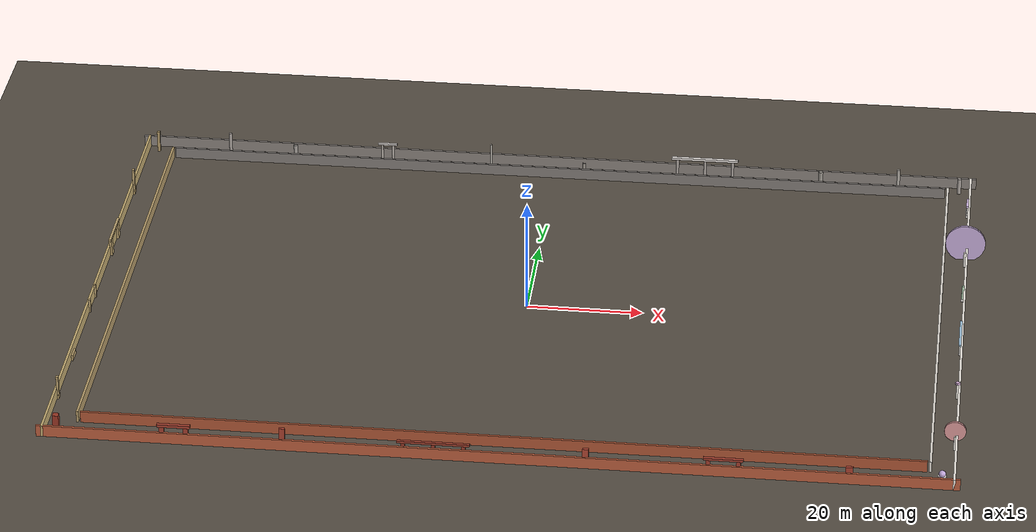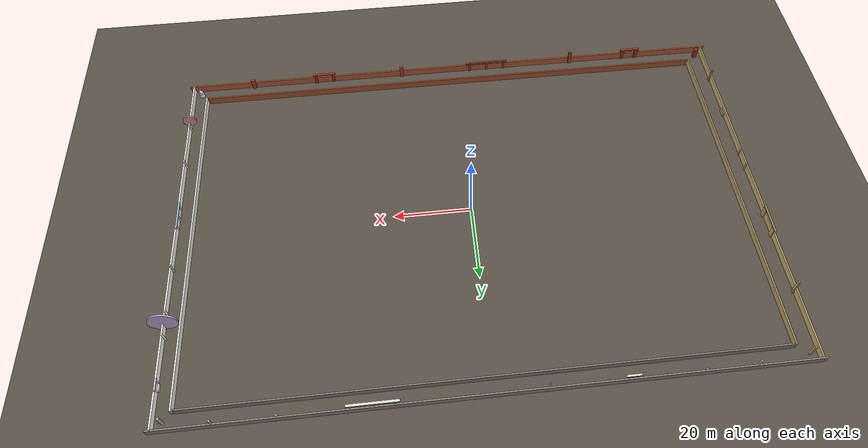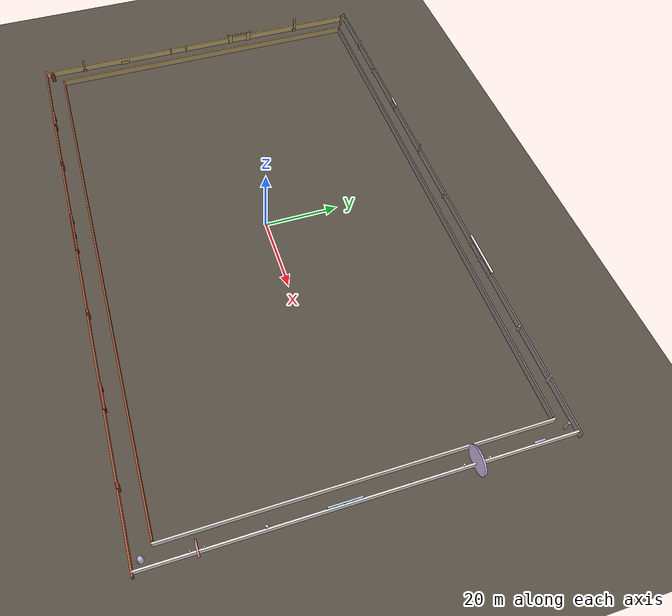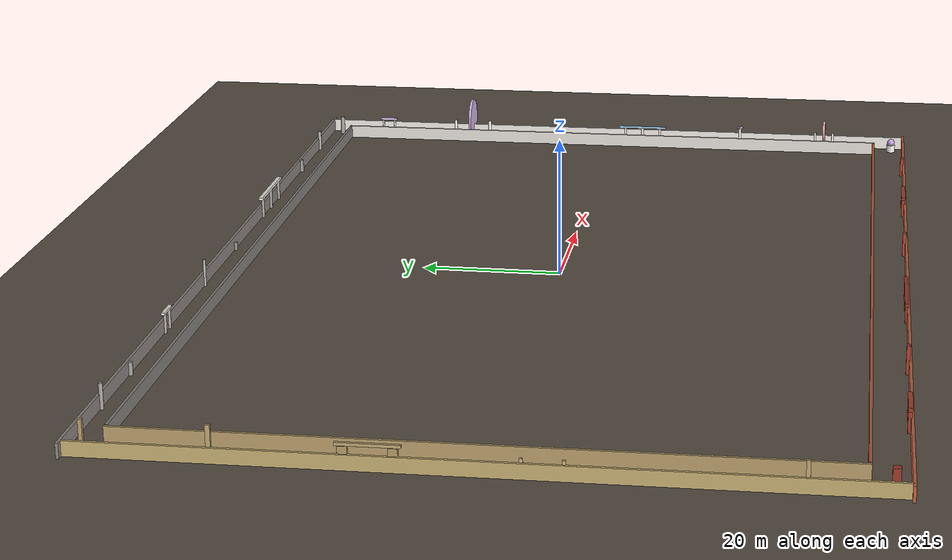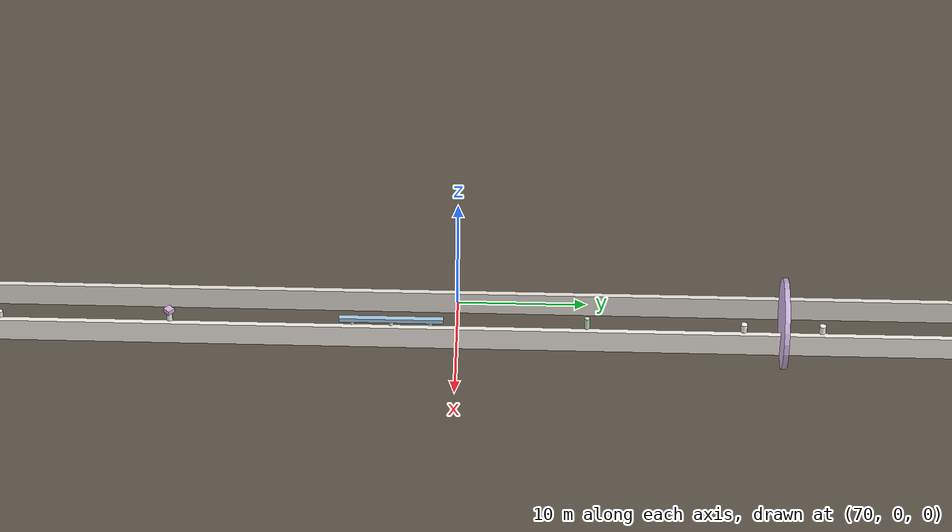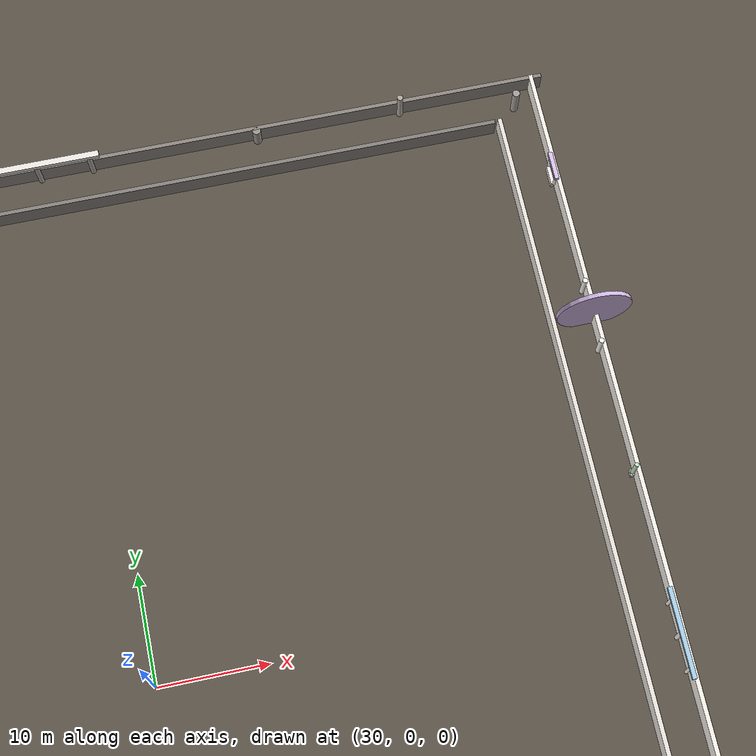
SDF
<?xml version="1.0"?>
<sdf version="1.6">
  <world name="default">
    <gravity>0 0 -9.8</gravity>

    <physics type="ode">
      <real_time_update_rate>1000.0</real_time_update_rate>
      <max_step_size>0.001</max_step_size>
      <real_time_factor>1</real_time_factor>
    </physics>

    <scene>
      <ambient>0.7 0.65 0.6 1</ambient>
      <background>0.4 0.6 0.9 1</background>
      <shadows>true</shadows>
    </scene>

    <!-- Mediterranean Sun -->
    <light type="directional" name="sun">
      <cast_shadows>true</cast_shadows>
      <direction>-0.4 0.3 -0.9</direction>
      <diffuse>1.0 0.95 0.85 1</diffuse>
      <specular>0.3 0.28 0.25 1</specular>
    </light>

    <!-- Ground plane -->
    <model name="ground_plane">
      <static>true</static>
      <pose>0 0 0 0 0 0</pose>
      <link name="link">
        <collision name="collision">
          <geometry>
            <plane>
              <normal>0 0 1</normal>
              <size>300 300</size>
            </plane>
          </geometry>
        </collision>
        <visual name="visual">
          <geometry>
            <plane>
              <normal>0 0 1</normal>
              <size>300 300</size>
            </plane>
          </geometry>
          <material>
            <ambient>0.25 0.22 0.20 1</ambient>
            <diffuse>0.35 0.32 0.28 1</diffuse>
          </material>
        </visual>
      </link>
    </model>

    <!-- ════════════════ OUTER WALLS ════════════════ -->

    <!-- Outer South Wall - Terracotta Red -->
    <model name="outer_south">
      <static>true</static>
      <pose>0 -50 1.0 0 0 0</pose>
      <link name="link">
        <collision name="collision">
          <geometry><box><size>152 0.4 2.0</size></box></geometry>
        </collision>
        <visual name="visual">
          <geometry><box><size>152 0.4 2.0</size></box></geometry>
          <material>
            <ambient>0.6 0.28 0.18 1</ambient>
            <diffuse>0.75 0.38 0.25 1</diffuse>
          </material>
        </visual>
      </link>
    </model>

    <!-- Outer North Wall - Grey Granite -->
    <model name="outer_north">
      <static>true</static>
      <pose>0 50 1.0 0 0 0</pose>
      <link name="link">
        <collision name="collision">
          <geometry><box><size>152 0.4 2.0</size></box></geometry>
        </collision>
        <visual name="visual">
          <geometry><box><size>152 0.4 2.0</size></box></geometry>
          <material>
            <ambient>0.42 0.40 0.38 1</ambient>
            <diffuse>0.55 0.52 0.50 1</diffuse>
          </material>
        </visual>
      </link>
    </model>

    <!-- Outer West Wall - Golden Sandstone -->
    <model name="outer_west">
      <static>true</static>
      <pose>-75 0 1.0 0 0 1.5708</pose>
      <link name="link">
        <collision name="collision">
          <geometry><box><size>100.4 0.4 2.0</size></box></geometry>
        </collision>
        <visual name="visual">
          <geometry><box><size>100.4 0.4 2.0</size></box></geometry>
          <material>
            <ambient>0.62 0.52 0.32 1</ambient>
            <diffuse>0.78 0.68 0.45 1</diffuse>
          </material>
        </visual>
      </link>
    </model>

    <!-- Outer East Wall - White Marble -->
    <model name="outer_east">
      <static>true</static>
      <pose>75 0 1.0 0 0 1.5708</pose>
      <link name="link">
        <collision name="collision">
          <geometry><box><size>100.4 0.4 2.0</size></box></geometry>
        </collision>
        <visual name="visual">
          <geometry><box><size>100.4 0.4 2.0</size></box></geometry>
          <material>
            <ambient>0.82 0.80 0.78 1</ambient>
            <diffuse>0.95 0.93 0.90 1</diffuse>
          </material>
        </visual>
      </link>
    </model>

    <!-- ════════════════ INNER WALLS (NARROW CORRIDORS) ════════════════ -->
    <!-- Positioned to create 4-5m corridors with asymmetric offset -->

    <!-- Inner South Wall at y=-45 → 5m south corridor -->
    <model name="inner_south">
      <static>true</static>
      <pose>0.5 -45 1.0 0 0 0</pose>
      <link name="link">
        <collision name="collision">
          <geometry><box><size>140 0.4 2.0</size></box></geometry>
        </collision>
        <visual name="visual">
          <geometry><box><size>140 0.4 2.0</size></box></geometry>
          <material>
            <ambient>0.55 0.25 0.15 1</ambient>
            <diffuse>0.70 0.35 0.22 1</diffuse>
          </material>
        </visual>
      </link>
    </model>

    <!-- Inner North Wall at y=46 → 4m north corridor -->
    <model name="inner_north">
      <static>true</static>
      <pose>0.5 46 1.0 0 0 0</pose>
      <link name="link">
        <collision name="collision">
          <geometry><box><size>140 0.4 2.0</size></box></geometry>
        </collision>
        <visual name="visual">
          <geometry><box><size>140 0.4 2.0</size></box></geometry>
          <material>
            <ambient>0.40 0.38 0.36 1</ambient>
            <diffuse>0.52 0.50 0.48 1</diffuse>
          </material>
        </visual>
      </link>
    </model>

    <!-- Inner West Wall at x=-70 → 5m west corridor -->
    <model name="inner_west">
      <static>true</static>
      <pose>-70 0.5 1.0 0 0 1.5708</pose>
      <link name="link">
        <collision name="collision">
          <geometry><box><size>91.4 0.4 2.0</size></box></geometry>
        </collision>
        <visual name="visual">
          <geometry><box><size>91.4 0.4 2.0</size></box></geometry>
          <material>
            <ambient>0.58 0.48 0.30 1</ambient>
            <diffuse>0.72 0.62 0.42 1</diffuse>
          </material>
        </visual>
      </link>
    </model>

    <!-- Inner East Wall at x=71 → 4m east corridor -->
    <model name="inner_east">
      <static>true</static>
      <pose>71 0.5 1.0 0 0 1.5708</pose>
      <link name="link">
        <collision name="collision">
          <geometry><box><size>91.4 0.4 2.0</size></box></geometry>
        </collision>
        <visual name="visual">
          <geometry><box><size>91.4 0.4 2.0</size></box></geometry>
          <material>
            <ambient>0.78 0.76 0.74 1</ambient>
            <diffuse>0.90 0.88 0.85 1</diffuse>
          </material>
        </visual>
      </link>
    </model>

    <!-- ═══════════════════ SOUTH CORRIDOR: TRIUMPHAL ARCH GALLERY ═══════════════════ -->
    <!-- 5m wide - Square pillars with lintels - FLUSH TO OUTER WALL at y=-49.7         -->

    <!-- Arch 1 -->
    <model name="arch_s1_left">
      <static>true</static>
      <pose>-55 -49.7 1.5 0 0 0</pose>
      <link name="link">
        <collision name="collision"><geometry><box><size>0.8 0.5 3.0</size></box></geometry></collision>
        <visual name="visual"><geometry><box><size>0.8 0.5 3.0</size></box></geometry>
          <material><ambient>0.5 0.18 0.12 1</ambient><diffuse>0.65 0.25 0.18 1</diffuse></material>
        </visual>
      </link>
    </model>
    <model name="arch_s1_right">
      <static>true</static>
      <pose>-51 -49.7 1.5 0 0 0</pose>
      <link name="link">
        <collision name="collision"><geometry><box><size>0.8 0.5 3.0</size></box></geometry></collision>
        <visual name="visual"><geometry><box><size>0.8 0.5 3.0</size></box></geometry>
          <material><ambient>0.5 0.18 0.12 1</ambient><diffuse>0.65 0.25 0.18 1</diffuse></material>
        </visual>
      </link>
    </model>
    <model name="arch_s1_lintel">
      <static>true</static>
      <pose>-53 -49.7 3.2 0 0 0</pose>
      <link name="link">
        <collision name="collision"><geometry><box><size>5.5 0.6 0.5</size></box></geometry></collision>
        <visual name="visual"><geometry><box><size>5.5 0.6 0.5</size></box></geometry>
          <material><ambient>0.5 0.18 0.12 1</ambient><diffuse>0.65 0.25 0.18 1</diffuse></material>
        </visual>
      </link>
    </model>

    <!-- Victory column -->
    <model name="victory_s1">
      <static>true</static>
      <pose>-35 -49.7 2.0 0 0 0</pose>
      <link name="link">
        <collision name="collision"><geometry><box><size>0.9 0.5 4.0</size></box></geometry></collision>
        <visual name="visual"><geometry><box><size>0.9 0.5 4.0</size></box></geometry>
          <material><ambient>0.52 0.19 0.13 1</ambient><diffuse>0.68 0.26 0.19 1</diffuse></material>
        </visual>
      </link>
    </model>

    <!-- Arch 2 - Triple -->
    <model name="arch_s2_1">
      <static>true</static>
      <pose>-15 -49.7 1.3 0 0 0</pose>
      <link name="link">
        <collision name="collision"><geometry><box><size>0.6 0.4 2.6</size></box></geometry></collision>
        <visual name="visual"><geometry><box><size>0.6 0.4 2.6</size></box></geometry>
          <material><ambient>0.48 0.17 0.11 1</ambient><diffuse>0.62 0.24 0.17 1</diffuse></material>
        </visual>
      </link>
    </model>
    <model name="arch_s2_2">
      <static>true</static>
      <pose>-10 -49.7 1.3 0 0 0</pose>
      <link name="link">
        <collision name="collision"><geometry><box><size>0.6 0.4 2.6</size></box></geometry></collision>
        <visual name="visual"><geometry><box><size>0.6 0.4 2.6</size></box></geometry>
          <material><ambient>0.48 0.17 0.11 1</ambient><diffuse>0.62 0.24 0.17 1</diffuse></material>
        </visual>
      </link>
    </model>
    <model name="arch_s2_3">
      <static>true</static>
      <pose>-5 -49.7 1.3 0 0 0</pose>
      <link name="link">
        <collision name="collision"><geometry><box><size>0.6 0.4 2.6</size></box></geometry></collision>
        <visual name="visual"><geometry><box><size>0.6 0.4 2.6</size></box></geometry>
          <material><ambient>0.48 0.17 0.11 1</ambient><diffuse>0.62 0.24 0.17 1</diffuse></material>
        </visual>
      </link>
    </model>
    <model name="arch_s2_lintel">
      <static>true</static>
      <pose>-10 -49.7 2.8 0 0 0</pose>
      <link name="link">
        <collision name="collision"><geometry><box><size>12.0 0.5 0.4</size></box></geometry></collision>
        <visual name="visual"><geometry><box><size>12.0 0.5 0.4</size></box></geometry>
          <material><ambient>0.48 0.17 0.11 1</ambient><diffuse>0.62 0.24 0.17 1</diffuse></material>
        </visual>
      </link>
    </model>

    <!-- Single tall pillar -->
    <model name="pillar_s1">
      <static>true</static>
      <pose>15 -49.7 1.75 0 0 0</pose>
      <link name="link">
        <collision name="collision"><geometry><box><size>1.0 0.5 3.5</size></box></geometry></collision>
        <visual name="visual"><geometry><box><size>1.0 0.5 3.5</size></box></geometry>
          <material><ambient>0.55 0.20 0.14 1</ambient><diffuse>0.70 0.28 0.20 1</diffuse></material>
        </visual>
      </link>
    </model>

    <!-- Arch 3 -->
    <model name="arch_s3_left">
      <static>true</static>
      <pose>35 -49.7 1.4 0 0 0</pose>
      <link name="link">
        <collision name="collision"><geometry><box><size>0.7 0.5 2.8</size></box></geometry></collision>
        <visual name="visual"><geometry><box><size>0.7 0.5 2.8</size></box></geometry>
          <material><ambient>0.50 0.18 0.12 1</ambient><diffuse>0.65 0.25 0.18 1</diffuse></material>
        </visual>
      </link>
    </model>
    <model name="arch_s3_right">
      <static>true</static>
      <pose>40 -49.7 1.4 0 0 0</pose>
      <link name="link">
        <collision name="collision"><geometry><box><size>0.7 0.5 2.8</size></box></geometry></collision>
        <visual name="visual"><geometry><box><size>0.7 0.5 2.8</size></box></geometry>
          <material><ambient>0.50 0.18 0.12 1</ambient><diffuse>0.65 0.25 0.18 1</diffuse></material>
        </visual>
      </link>
    </model>
    <model name="arch_s3_lintel">
      <static>true</static>
      <pose>37.5 -49.7 3.0 0 0 0</pose>
      <link name="link">
        <collision name="collision"><geometry><box><size>6.5 0.6 0.4</size></box></geometry></collision>
        <visual name="visual"><geometry><box><size>6.5 0.6 0.4</size></box></geometry>
          <material><ambient>0.50 0.18 0.12 1</ambient><diffuse>0.65 0.25 0.18 1</diffuse></material>
        </visual>
      </link>
    </model>

    <!-- End monument -->
    <model name="monument_s">
      <static>true</static>
      <pose>58 -49.7 1.5 0 0 0</pose>
      <link name="link">
        <collision name="collision"><geometry><box><size>1.2 0.5 3.0</size></box></geometry></collision>
        <visual name="visual"><geometry><box><size>1.2 0.5 3.0</size></box></geometry>
          <material><ambient>0.52 0.19 0.13 1</ambient><diffuse>0.68 0.26 0.19 1</diffuse></material>
        </visual>
      </link>
    </model>

    <!-- ═══════════════════ NORTH CORRIDOR: GREEK COLONNADE ══════════════════════════ -->
    <!-- 4m wide - Round columns varying heights - FLUSH TO OUTER WALL at y=49.7        -->

    <!-- Tall column with capital -->
    <model name="greek_n1">
      <static>true</static>
      <pose>-60 49.7 1.75 0 0 0</pose>
      <link name="link">
        <collision name="collision"><geometry><cylinder><radius>0.28</radius><length>3.5</length></cylinder></geometry></collision>
        <visual name="visual"><geometry><cylinder><radius>0.28</radius><length>3.5</length></cylinder></geometry>
          <material><ambient>0.50 0.48 0.46 1</ambient><diffuse>0.65 0.62 0.60 1</diffuse></material>
        </visual>
      </link>
    </model>

    <!-- Short squat column -->
    <model name="greek_n2">
      <static>true</static>
      <pose>-48 49.7 0.9 0 0 0</pose>
      <link name="link">
        <collision name="collision"><geometry><cylinder><radius>0.35</radius><length>1.8</length></cylinder></geometry></collision>
        <visual name="visual"><geometry><cylinder><radius>0.35</radius><length>1.8</length></cylinder></geometry>
          <material><ambient>0.48 0.46 0.44 1</ambient><diffuse>0.62 0.60 0.58 1</diffuse></material>
        </visual>
      </link>
    </model>

    <!-- Twin columns -->
    <model name="greek_n3a">
      <static>true</static>
      <pose>-32 49.7 1.4 0 0 0</pose>
      <link name="link">
        <collision name="collision"><geometry><cylinder><radius>0.22</radius><length>2.8</length></cylinder></geometry></collision>
        <visual name="visual"><geometry><cylinder><radius>0.22</radius><length>2.8</length></cylinder></geometry>
          <material><ambient>0.52 0.50 0.48 1</ambient><diffuse>0.68 0.65 0.62 1</diffuse></material>
        </visual>
      </link>
    </model>
    <model name="greek_n3b">
      <static>true</static>
      <pose>-30 49.7 1.4 0 0 0</pose>
      <link name="link">
        <collision name="collision"><geometry><cylinder><radius>0.22</radius><length>2.8</length></cylinder></geometry></collision>
        <visual name="visual"><geometry><cylinder><radius>0.22</radius><length>2.8</length></cylinder></geometry>
          <material><ambient>0.52 0.50 0.48 1</ambient><diffuse>0.68 0.65 0.62 1</diffuse></material>
        </visual>
      </link>
    </model>
    <model name="greek_n3_ent">
      <static>true</static>
      <pose>-31 49.7 2.95 0 0 0</pose>
      <link name="link">
        <collision name="collision"><geometry><box><size>3.5 0.5 0.3</size></box></geometry></collision>
        <visual name="visual"><geometry><box><size>3.5 0.5 0.3</size></box></geometry>
          <material><ambient>0.82 0.80 0.78 1</ambient><diffuse>0.92 0.90 0.88 1</diffuse></material>
        </visual>
      </link>
    </model>

    <!-- Very tall slender -->
    <model name="greek_n4">
      <static>true</static>
      <pose>-12 49.7 2.0 0 0 0</pose>
      <link name="link">
        <collision name="collision"><geometry><cylinder><radius>0.20</radius><length>4.0</length></cylinder></geometry></collision>
        <visual name="visual"><geometry><cylinder><radius>0.20</radius><length>4.0</length></cylinder></geometry>
          <material><ambient>0.55 0.53 0.50 1</ambient><diffuse>0.70 0.68 0.65 1</diffuse></material>
        </visual>
      </link>
    </model>

    <!-- Broken column -->
    <model name="greek_n5">
      <static>true</static>
      <pose>5 49.7 0.6 0 0 0</pose>
      <link name="link">
        <collision name="collision"><geometry><cylinder><radius>0.32</radius><length>1.2</length></cylinder></geometry></collision>
        <visual name="visual"><geometry><cylinder><radius>0.32</radius><length>1.2</length></cylinder></geometry>
          <material><ambient>0.45 0.43 0.40 1</ambient><diffuse>0.58 0.55 0.52 1</diffuse></material>
        </visual>
      </link>
    </model>

    <!-- Triple with pediment -->
    <model name="greek_n6a">
      <static>true</static>
      <pose>22 49.7 1.5 0 0 0</pose>
      <link name="link">
        <collision name="collision"><geometry><cylinder><radius>0.25</radius><length>3.0</length></cylinder></geometry></collision>
        <visual name="visual"><geometry><cylinder><radius>0.25</radius><length>3.0</length></cylinder></geometry>
          <material><ambient>0.50 0.48 0.45 1</ambient><diffuse>0.65 0.62 0.60 1</diffuse></material>
        </visual>
      </link>
    </model>
    <model name="greek_n6b">
      <static>true</static>
      <pose>27 49.7 1.5 0 0 0</pose>
      <link name="link">
        <collision name="collision"><geometry><cylinder><radius>0.25</radius><length>3.0</length></cylinder></geometry></collision>
        <visual name="visual"><geometry><cylinder><radius>0.25</radius><length>3.0</length></cylinder></geometry>
          <material><ambient>0.50 0.48 0.45 1</ambient><diffuse>0.65 0.62 0.60 1</diffuse></material>
        </visual>
      </link>
    </model>
    <model name="greek_n6c">
      <static>true</static>
      <pose>32 49.7 1.5 0 0 0</pose>
      <link name="link">
        <collision name="collision"><geometry><cylinder><radius>0.25</radius><length>3.0</length></cylinder></geometry></collision>
        <visual name="visual"><geometry><cylinder><radius>0.25</radius><length>3.0</length></cylinder></geometry>
          <material><ambient>0.50 0.48 0.45 1</ambient><diffuse>0.65 0.62 0.60 1</diffuse></material>
        </visual>
      </link>
    </model>
    <model name="greek_n6_ped">
      <static>true</static>
      <pose>27 49.7 3.2 0 0 0</pose>
      <link name="link">
        <collision name="collision"><geometry><box><size>12.0 0.6 0.4</size></box></geometry></collision>
        <visual name="visual"><geometry><box><size>12.0 0.6 0.4</size></box></geometry>
          <material><ambient>0.80 0.78 0.75 1</ambient><diffuse>0.92 0.90 0.88 1</diffuse></material>
        </visual>
      </link>
    </model>

    <!-- Thick drum -->
    <model name="greek_n7">
      <static>true</static>
      <pose>48 49.7 1.0 0 0 0</pose>
      <link name="link">
        <collision name="collision"><geometry><cylinder><radius>0.40</radius><length>2.0</length></cylinder></geometry></collision>
        <visual name="visual"><geometry><cylinder><radius>0.40</radius><length>2.0</length></cylinder></geometry>
          <material><ambient>0.47 0.45 0.42 1</ambient><diffuse>0.60 0.58 0.55 1</diffuse></material>
        </visual>
      </link>
    </model>

    <!-- End pair -->
    <model name="greek_n8">
      <static>true</static>
      <pose>62 49.7 1.6 0 0 0</pose>
      <link name="link">
        <collision name="collision"><geometry><cylinder><radius>0.28</radius><length>3.2</length></cylinder></geometry></collision>
        <visual name="visual"><geometry><cylinder><radius>0.28</radius><length>3.2</length></cylinder></geometry>
          <material><ambient>0.53 0.51 0.48 1</ambient><diffuse>0.68 0.66 0.63 1</diffuse></material>
        </visual>
      </link>
    </model>

    <!-- ═══════════════════ WEST CORRIDOR: EGYPTIAN OBELISKS ═════════════════════════ -->
    <!-- 5m wide - Tapered monuments - FLUSH TO OUTER WALL at x=-74.7                   -->

    <!-- Large obelisk -->
    <model name="obelisk_w1_base">
      <static>true</static>
      <pose>-74.7 -38 0.35 0 0 0</pose>
      <link name="link">
        <collision name="collision"><geometry><box><size>0.5 1.0 0.7</size></box></geometry></collision>
        <visual name="visual"><geometry><box><size>0.5 1.0 0.7</size></box></geometry>
          <material><ambient>0.55 0.45 0.28 1</ambient><diffuse>0.70 0.60 0.40 1</diffuse></material>
        </visual>
      </link>
    </model>
    <model name="obelisk_w1_shaft">
      <static>true</static>
      <pose>-74.7 -38 2.4 0 0 0</pose>
      <link name="link">
        <collision name="collision"><geometry><box><size>0.4 0.5 3.4</size></box></geometry></collision>
        <visual name="visual"><geometry><box><size>0.4 0.5 3.4</size></box></geometry>
          <material><ambient>0.60 0.50 0.32 1</ambient><diffuse>0.75 0.65 0.45 1</diffuse></material>
        </visual>
      </link>
    </model>

    <!-- Sphinx base -->
    <model name="sphinx_w">
      <static>true</static>
      <pose>-74.7 -25 0.5 0 0 0</pose>
      <link name="link">
        <collision name="collision"><geometry><box><size>0.5 2.5 1.0</size></box></geometry></collision>
        <visual name="visual"><geometry><box><size>0.5 2.5 1.0</size></box></geometry>
          <material><ambient>0.58 0.48 0.30 1</ambient><diffuse>0.72 0.62 0.42 1</diffuse></material>
        </visual>
      </link>
    </model>

    <!-- Small obelisk pair -->
    <model name="obelisk_w2a">
      <static>true</static>
      <pose>-74.7 -10 1.25 0 0 0</pose>
      <link name="link">
        <collision name="collision"><geometry><box><size>0.35 0.4 2.5</size></box></geometry></collision>
        <visual name="visual"><geometry><box><size>0.35 0.4 2.5</size></box></geometry>
          <material><ambient>0.65 0.55 0.38 1</ambient><diffuse>0.80 0.70 0.50 1</diffuse></material>
        </visual>
      </link>
    </model>
    <model name="obelisk_w2b">
      <static>true</static>
      <pose>-74.7 -5 1.25 0 0 0</pose>
      <link name="link">
        <collision name="collision"><geometry><box><size>0.35 0.4 2.5</size></box></geometry></collision>
        <visual name="visual"><geometry><box><size>0.35 0.4 2.5</size></box></geometry>
          <material><ambient>0.65 0.55 0.38 1</ambient><diffuse>0.80 0.70 0.50 1</diffuse></material>
        </visual>
      </link>
    </model>

    <!-- Pylon gateway -->
    <model name="pylon_w_left">
      <static>true</static>
      <pose>-74.7 10 1.5 0 -0.04 0</pose>
      <link name="link">
        <collision name="collision"><geometry><box><size>0.5 1.2 3.0</size></box></geometry></collision>
        <visual name="visual"><geometry><box><size>0.5 1.2 3.0</size></box></geometry>
          <material><ambient>0.58 0.48 0.30 1</ambient><diffuse>0.72 0.62 0.42 1</diffuse></material>
        </visual>
      </link>
    </model>
    <model name="pylon_w_right">
      <static>true</static>
      <pose>-74.7 16 1.5 0 -0.04 0</pose>
      <link name="link">
        <collision name="collision"><geometry><box><size>0.5 1.2 3.0</size></box></geometry></collision>
        <visual name="visual"><geometry><box><size>0.5 1.2 3.0</size></box></geometry>
          <material><ambient>0.58 0.48 0.30 1</ambient><diffuse>0.72 0.62 0.42 1</diffuse></material>
        </visual>
      </link>
    </model>
    <model name="pylon_w_lintel">
      <static>true</static>
      <pose>-74.7 13 3.2 0 0 0</pose>
      <link name="link">
        <collision name="collision"><geometry><box><size>0.4 8.0 0.4</size></box></geometry></collision>
        <visual name="visual"><geometry><box><size>0.4 8.0 0.4</size></box></geometry>
          <material><ambient>0.62 0.52 0.34 1</ambient><diffuse>0.76 0.66 0.46 1</diffuse></material>
        </visual>
      </link>
    </model>

    <!-- Tall obelisk -->
    <model name="obelisk_w3_base">
      <static>true</static>
      <pose>-74.7 32 0.4 0 0 0</pose>
      <link name="link">
        <collision name="collision"><geometry><box><size>0.5 1.2 0.8</size></box></geometry></collision>
        <visual name="visual"><geometry><box><size>0.5 1.2 0.8</size></box></geometry>
          <material><ambient>0.52 0.42 0.26 1</ambient><diffuse>0.68 0.58 0.38 1</diffuse></material>
        </visual>
      </link>
    </model>
    <model name="obelisk_w3_shaft">
      <static>true</static>
      <pose>-74.7 32 2.8 0 0 0</pose>
      <link name="link">
        <collision name="collision"><geometry><box><size>0.4 0.6 4.0</size></box></geometry></collision>
        <visual name="visual"><geometry><box><size>0.4 0.6 4.0</size></box></geometry>
          <material><ambient>0.60 0.50 0.32 1</ambient><diffuse>0.75 0.65 0.45 1</diffuse></material>
        </visual>
      </link>
    </model>

    <!-- ═══════════════════ EAST CORRIDOR: BYZANTINE ARCADE ══════════════════════════ -->
    <!-- 4m wide - Paired columns with arches - FLUSH TO OUTER WALL at x=74.7           -->

    <!-- Paired columns 1 -->
    <model name="byz_e1a">
      <static>true</static>
      <pose>74.7 -38 1.25 0 0 0</pose>
      <link name="link">
        <collision name="collision"><geometry><cylinder><radius>0.18</radius><length>2.5</length></cylinder></geometry></collision>
        <visual name="visual"><geometry><cylinder><radius>0.18</radius><length>2.5</length></cylinder></geometry>
          <material><ambient>0.85 0.83 0.80 1</ambient><diffuse>0.96 0.94 0.91 1</diffuse></material>
        </visual>
      </link>
    </model>
    <model name="byz_e1b">
      <static>true</static>
      <pose>74.7 -35 1.25 0 0 0</pose>
      <link name="link">
        <collision name="collision"><geometry><cylinder><radius>0.18</radius><length>2.5</length></cylinder></geometry></collision>
        <visual name="visual"><geometry><cylinder><radius>0.18</radius><length>2.5</length></cylinder></geometry>
          <material><ambient>0.85 0.83 0.80 1</ambient><diffuse>0.96 0.94 0.91 1</diffuse></material>
        </visual>
      </link>
    </model>
    <model name="byz_e1_arch">
      <static>true</static>
      <pose>74.7 -36.5 2.7 1.5708 0 0</pose>
      <link name="link">
        <collision name="collision"><geometry><cylinder><radius>1.8</radius><length>0.4</length></cylinder></geometry></collision>
        <visual name="visual"><geometry><cylinder><radius>1.8</radius><length>0.4</length></cylinder></geometry>
          <material><ambient>0.75 0.50 0.50 1</ambient><diffuse>0.88 0.62 0.62 1</diffuse></material>
        </visual>
      </link>
    </model>

    <!-- Ornate capital column -->
    <model name="byz_e2">
      <static>true</static>
      <pose>74.7 -22 1.4 0 0 0</pose>
      <link name="link">
        <collision name="collision"><geometry><cylinder><radius>0.22</radius><length>2.8</length></cylinder></geometry></collision>
        <visual name="visual"><geometry><cylinder><radius>0.22</radius><length>2.8</length></cylinder></geometry>
          <material><ambient>0.88 0.86 0.82 1</ambient><diffuse>0.98 0.96 0.92 1</diffuse></material>
        </visual>
      </link>
    </model>
    <model name="byz_e2_cap">
      <static>true</static>
      <pose>74.7 -22 2.95 0 0 0.785</pose>
      <link name="link">
        <collision name="collision"><geometry><box><size>0.6 0.6 0.35</size></box></geometry></collision>
        <visual name="visual"><geometry><box><size>0.6 0.6 0.35</size></box></geometry>
          <material><ambient>0.70 0.55 0.70 1</ambient><diffuse>0.85 0.70 0.85 1</diffuse></material>
        </visual>
      </link>
    </model>

    <!-- Triple column group -->
    <model name="byz_e3a">
      <static>true</static>
      <pose>74.7 -8 1.15 0 0 0</pose>
      <link name="link">
        <collision name="collision"><geometry><cylinder><radius>0.16</radius><length>2.3</length></cylinder></geometry></collision>
        <visual name="visual"><geometry><cylinder><radius>0.16</radius><length>2.3</length></cylinder></geometry>
          <material><ambient>0.82 0.80 0.78 1</ambient><diffuse>0.94 0.92 0.90 1</diffuse></material>
        </visual>
      </link>
    </model>
    <model name="byz_e3b">
      <static>true</static>
      <pose>74.7 -5 1.15 0 0 0</pose>
      <link name="link">
        <collision name="collision"><geometry><cylinder><radius>0.20</radius><length>2.3</length></cylinder></geometry></collision>
        <visual name="visual"><geometry><cylinder><radius>0.20</radius><length>2.3</length></cylinder></geometry>
          <material><ambient>0.82 0.80 0.78 1</ambient><diffuse>0.94 0.92 0.90 1</diffuse></material>
        </visual>
      </link>
    </model>
    <model name="byz_e3c">
      <static>true</static>
      <pose>74.7 -2 1.15 0 0 0</pose>
      <link name="link">
        <collision name="collision"><geometry><cylinder><radius>0.16</radius><length>2.3</length></cylinder></geometry></collision>
        <visual name="visual"><geometry><cylinder><radius>0.16</radius><length>2.3</length></cylinder></geometry>
          <material><ambient>0.82 0.80 0.78 1</ambient><diffuse>0.94 0.92 0.90 1</diffuse></material>
        </visual>
      </link>
    </model>
    <model name="byz_e3_ent">
      <static>true</static>
      <pose>74.7 -5 2.45 0 0 0</pose>
      <link name="link">
        <collision name="collision"><geometry><box><size>0.4 8.0 0.35</size></box></geometry></collision>
        <visual name="visual"><geometry><box><size>0.4 8.0 0.35</size></box></geometry>
          <material><ambient>0.50 0.65 0.75 1</ambient><diffuse>0.65 0.80 0.90 1</diffuse></material>
        </visual>
      </link>
    </model>

    <!-- Green spiral column -->
    <model name="byz_e4_base">
      <static>true</static>
      <pose>74.7 10 0.25 0 0 0</pose>
      <link name="link">
        <collision name="collision"><geometry><box><size>0.5 0.6 0.5</size></box></geometry></collision>
        <visual name="visual"><geometry><box><size>0.5 0.6 0.5</size></box></geometry>
          <material><ambient>0.78 0.76 0.74 1</ambient><diffuse>0.90 0.88 0.86 1</diffuse></material>
        </visual>
      </link>
    </model>
    <model name="byz_e4">
      <static>true</static>
      <pose>74.7 10 1.75 0 0 0</pose>
      <link name="link">
        <collision name="collision"><geometry><cylinder><radius>0.20</radius><length>2.5</length></cylinder></geometry></collision>
        <visual name="visual"><geometry><cylinder><radius>0.20</radius><length>2.5</length></cylinder></geometry>
          <material><ambient>0.60 0.75 0.60 1</ambient><diffuse>0.75 0.88 0.75 1</diffuse></material>
        </visual>
      </link>
    </model>

    <!-- Wide paired columns -->
    <model name="byz_e5a">
      <static>true</static>
      <pose>74.7 22 1.35 0 0 0</pose>
      <link name="link">
        <collision name="collision"><geometry><cylinder><radius>0.24</radius><length>2.7</length></cylinder></geometry></collision>
        <visual name="visual"><geometry><cylinder><radius>0.24</radius><length>2.7</length></cylinder></geometry>
          <material><ambient>0.86 0.84 0.81 1</ambient><diffuse>0.97 0.95 0.92 1</diffuse></material>
        </visual>
      </link>
    </model>
    <model name="byz_e5b">
      <static>true</static>
      <pose>74.7 28 1.35 0 0 0</pose>
      <link name="link">
        <collision name="collision"><geometry><cylinder><radius>0.24</radius><length>2.7</length></cylinder></geometry></collision>
        <visual name="visual"><geometry><cylinder><radius>0.24</radius><length>2.7</length></cylinder></geometry>
          <material><ambient>0.86 0.84 0.81 1</ambient><diffuse>0.97 0.95 0.92 1</diffuse></material>
        </visual>
      </link>
    </model>
    <model name="byz_e5_arch">
      <static>true</static>
      <pose>74.7 25 2.9 1.5708 0 0</pose>
      <link name="link">
        <collision name="collision"><geometry><cylinder><radius>3.5</radius><length>0.4</length></cylinder></geometry></collision>
        <visual name="visual"><geometry><cylinder><radius>3.5</radius><length>0.4</length></cylinder></geometry>
          <material><ambient>0.65 0.55 0.75 1</ambient><diffuse>0.80 0.70 0.88 1</diffuse></material>
        </visual>
      </link>
    </model>

    <!-- End monument -->
    <model name="byz_e6_base">
      <static>true</static>
      <pose>74.7 40 0.35 0 0 0</pose>
      <link name="link">
        <collision name="collision"><geometry><box><size>0.5 1.8 0.7</size></box></geometry></collision>
        <visual name="visual"><geometry><box><size>0.5 1.8 0.7</size></box></geometry>
          <material><ambient>0.80 0.78 0.75 1</ambient><diffuse>0.92 0.90 0.88 1</diffuse></material>
        </visual>
      </link>
    </model>
    <model name="byz_e6_col_l">
      <static>true</static>
      <pose>74.7 39 1.5 0 0 0</pose>
      <link name="link">
        <collision name="collision"><geometry><cylinder><radius>0.14</radius><length>1.6</length></cylinder></geometry></collision>
        <visual name="visual"><geometry><cylinder><radius>0.14</radius><length>1.6</length></cylinder></geometry>
          <material><ambient>0.88 0.86 0.83 1</ambient><diffuse>0.98 0.96 0.93 1</diffuse></material>
        </visual>
      </link>
    </model>
    <model name="byz_e6_col_r">
      <static>true</static>
      <pose>74.7 41 1.5 0 0 0</pose>
      <link name="link">
        <collision name="collision"><geometry><cylinder><radius>0.14</radius><length>1.6</length></cylinder></geometry></collision>
        <visual name="visual"><geometry><cylinder><radius>0.14</radius><length>1.6</length></cylinder></geometry>
          <material><ambient>0.88 0.86 0.83 1</ambient><diffuse>0.98 0.96 0.93 1</diffuse></material>
        </visual>
      </link>
    </model>
    <model name="byz_e6_top">
      <static>true</static>
      <pose>74.7 40 2.5 0 0 0</pose>
      <link name="link">
        <collision name="collision"><geometry><box><size>0.4 2.8 0.4</size></box></geometry></collision>
        <visual name="visual"><geometry><box><size>0.4 2.8 0.4</size></box></geometry>
          <material><ambient>0.70 0.60 0.80 1</ambient><diffuse>0.85 0.75 0.92 1</diffuse></material>
        </visual>
      </link>
    </model>

    <!-- ══════════════════════════ CORNER MONUMENTS ════════════════════════════════════ -->

    <!-- SW Corner: Roman Arch -->
    <model name="corner_sw">
      <static>true</static>
      <pose>-73 -48 1.5 0 0 0</pose>
      <link name="link">
        <collision name="collision"><geometry><box><size>1.0 1.0 3.0</size></box></geometry></collision>
        <visual name="visual"><geometry><box><size>1.0 1.0 3.0</size></box></geometry>
          <material><ambient>0.48 0.16 0.10 1</ambient><diffuse>0.62 0.22 0.15 1</diffuse></material>
        </visual>
      </link>
    </model>

    <!-- NW Corner: Obelisk -->
    <model name="corner_nw">
      <static>true</static>
      <pose>-73 48 2.0 0 0 0</pose>
      <link name="link">
        <collision name="collision"><geometry><box><size>0.5 0.5 4.0</size></box></geometry></collision>
        <visual name="visual"><geometry><box><size>0.5 0.5 4.0</size></box></geometry>
          <material><ambient>0.58 0.48 0.30 1</ambient><diffuse>0.72 0.62 0.42 1</diffuse></material>
        </visual>
      </link>
    </model>

    <!-- NE Corner: Greek Column -->
    <model name="corner_ne">
      <static>true</static>
      <pose>73 48 1.5 0 0 0</pose>
      <link name="link">
        <collision name="collision"><geometry><cylinder><radius>0.35</radius><length>3.0</length></cylinder></geometry></collision>
        <visual name="visual"><geometry><cylinder><radius>0.35</radius><length>3.0</length></cylinder></geometry>
          <material><ambient>0.50 0.48 0.45 1</ambient><diffuse>0.65 0.62 0.60 1</diffuse></material>
        </visual>
      </link>
    </model>

    <!-- SE Corner: Byzantine Dome -->
    <model name="corner_se_base">
      <static>true</static>
      <pose>73 -48 0.6 0 0 0</pose>
      <link name="link">
        <collision name="collision"><geometry><cylinder><radius>0.7</radius><length>1.2</length></cylinder></geometry></collision>
        <visual name="visual"><geometry><cylinder><radius>0.7</radius><length>1.2</length></cylinder></geometry>
          <material><ambient>0.82 0.80 0.78 1</ambient><diffuse>0.94 0.92 0.90 1</diffuse></material>
        </visual>
      </link>
    </model>
    <model name="corner_se_dome">
      <static>true</static>
      <pose>73 -48 1.6 0 0 0</pose>
      <link name="link">
        <collision name="collision"><geometry><sphere><radius>0.6</radius></sphere></geometry></collision>
        <visual name="visual"><geometry><sphere><radius>0.6</radius></sphere></geometry>
          <material><ambient>0.60 0.50 0.70 1</ambient><diffuse>0.75 0.65 0.85 1</diffuse></material>
        </visual>
      </link>
    </model>

    <!-- Ignition Fortress (v6) plugins -->
    <plugin filename="libignition-gazebo-physics-system.so"
            name="ignition::gazebo::systems::Physics"/>
    <plugin filename="libignition-gazebo-user-commands-system.so"
            name="ignition::gazebo::systems::UserCommands"/>
    <plugin filename="libignition-gazebo-scene-broadcaster-system.so"
            name="ignition::gazebo::systems::SceneBroadcaster"/>
    <plugin filename="libignition-gazebo-imu-system.so"
            name="ignition::gazebo::systems::Imu"/>
    <plugin filename="libignition-gazebo-sensors-system.so"
            name="ignition::gazebo::systems::Sensors">
      <render_engine>ogre2</render_engine>
    </plugin>

  </world>
</sdf>
